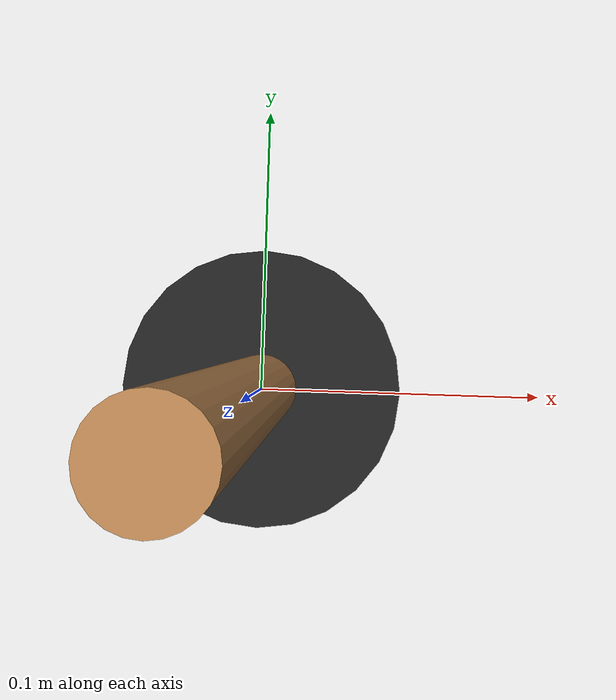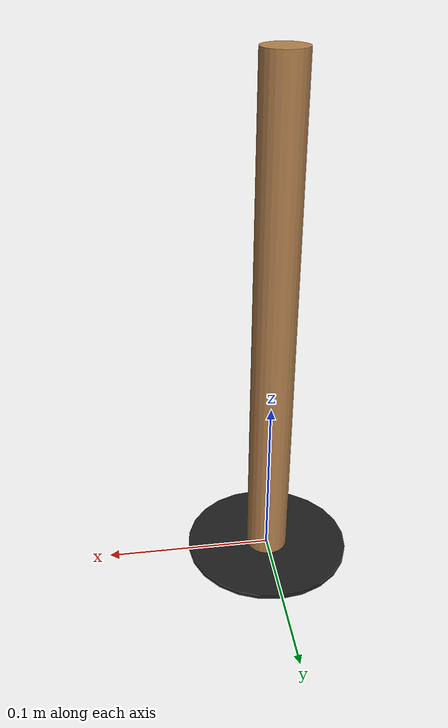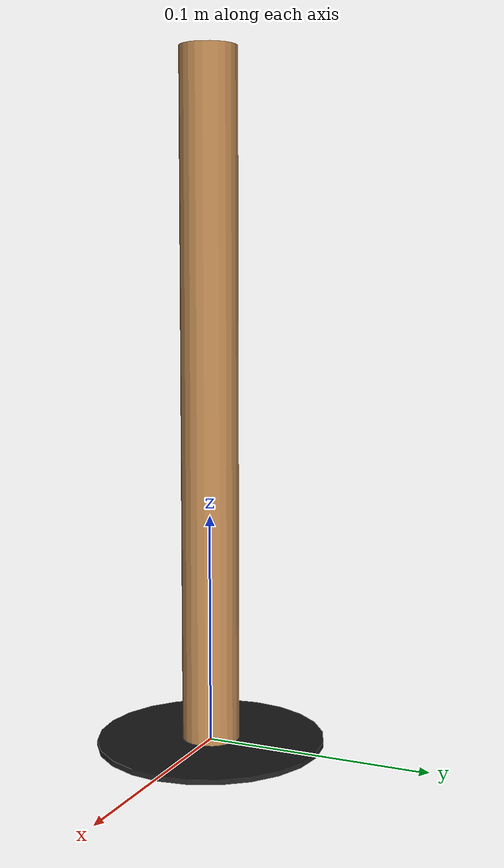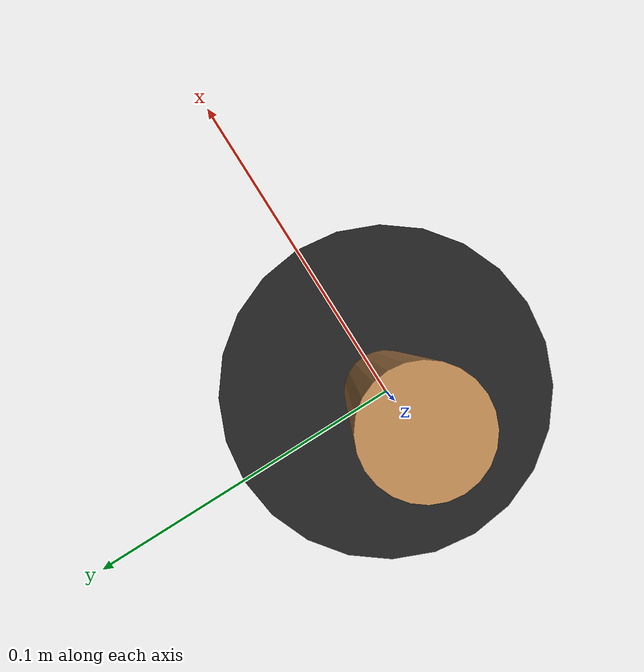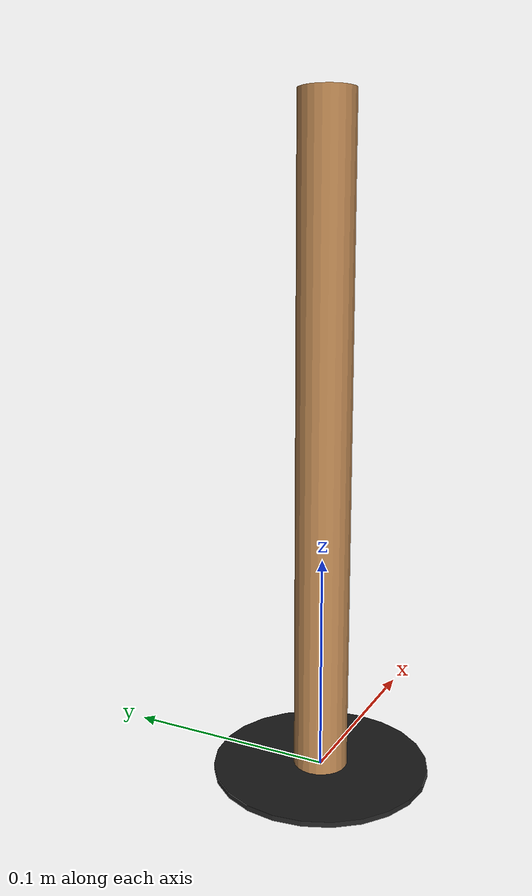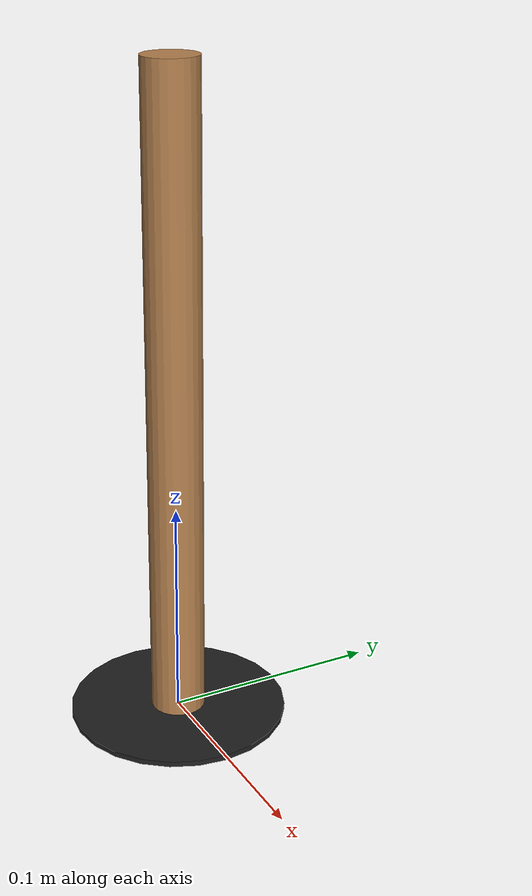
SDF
<?xml version="1.0" ?>
<sdf version="1.5">
  <model name="wood_cylinder_flared_1_25cm">
    <link name="base_disc">
      <pose>0 0 0 0 0 0</pose>
      <inertial>
        <mass>0.010000</mass>
        <inertia>
          <ixx>6.25520833333e-06</ixx>
          <ixy>0</ixy>
          <ixz>0</ixz>
          <iyy>6.25520833333e-06</iyy>
          <iyz>0</iyz>
          <izz>1.25e-05</izz>
        </inertia>
      </inertial>
      <collision name="collision">
        <geometry>
          <cylinder>
            <radius>0.050000</radius>
            <length>0.002500</length>
          </cylinder>
        </geometry>
        <surface>
          <contact>
            <ode/>
          </contact>
          <bounce>
            <restitution_coefficient>0.0</restitution_coefficient>
          </bounce>
          <friction>
            <ode/>
          </friction>
        </surface>
      </collision>
      <visual name="visual">
        <geometry>
          <cylinder>
            <radius>0.050000</radius>
            <length>0.002500</length>
          </cylinder>
        </geometry>
        <material>
          <script>
            <uri>file://media/materials/scripts/gazebo.material</uri>
            <name>Gazebo/Black</name>
          </script>
        </material>
      </visual>
    </link>
    <link name="link">
      <pose>0 0 0.15 0 0 0</pose>
      <inertial>
        <mass>0.0073</mass>
        <inertia>
          <ixx>7.604166666666669e-07</ixx>
          <ixy>0</ixy>
          <ixz>0</ixz>
          <iyy>7.604166666666669e-07</iyy>
          <iyz>0</iyz>
          <izz>7.604166666666669e-07</izz>
        </inertia>
      </inertial>
      <collision name="collision">
        <geometry>
          <cylinder>
            <radius>0.0125</radius>
            <length>0.3</length>
          </cylinder>
        </geometry>
        <surface>
          <contact>
            <poissons_ratio>0.347</poissons_ratio>
            <elastic_modulus>8.8e+09</elastic_modulus>
            <ode>
              <kp>100000</kp>
              <kd>100</kd>
              <max_vel>100.0</max_vel>
              <min_depth>0.001</min_depth>
            </ode>
          </contact>
          <friction>
            <torsional>
              <coefficient>1.0</coefficient>
              <use_patch_radius>0</use_patch_radius>
              <surface_radius>0.01</surface_radius>
            </torsional>
          </friction>
        </surface>
      </collision>
      <visual name="visual">
        <geometry>
          <cylinder>
            <radius>0.0125</radius>
            <length>0.3</length>
          </cylinder>
        </geometry>
        <material>
          <script>
            <uri>file://media/materials/scripts/gazebo.material</uri>
            <name>Gazebo/Wood</name>
          </script>
        </material>
      </visual>
    </link>
    <joint name="base_disc_to_body" type="fixed">
      <parent>base_disc</parent>
      <child>link</child>
      <pose>0 0 0 0 0 0</pose>
    </joint>
  </model>
</sdf>
